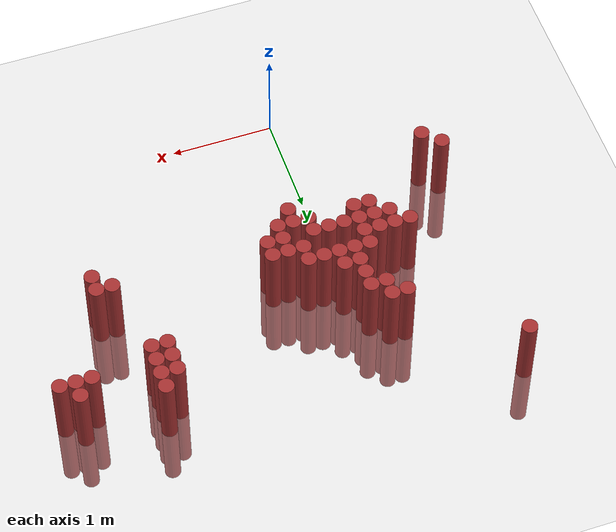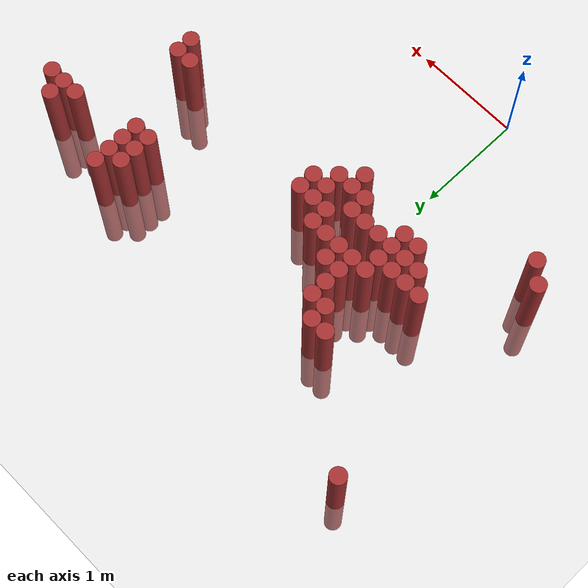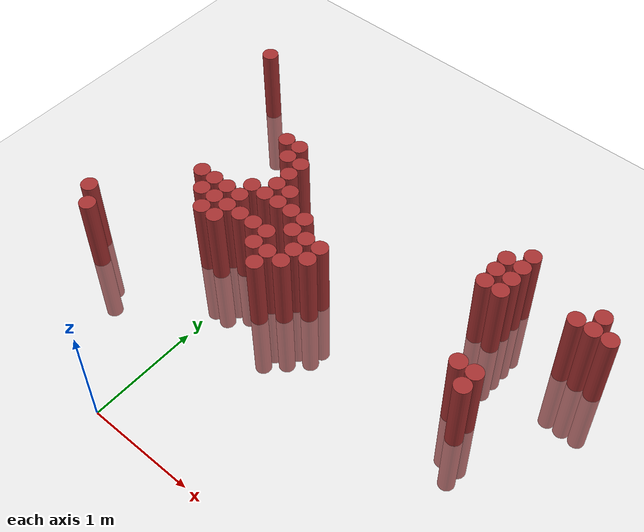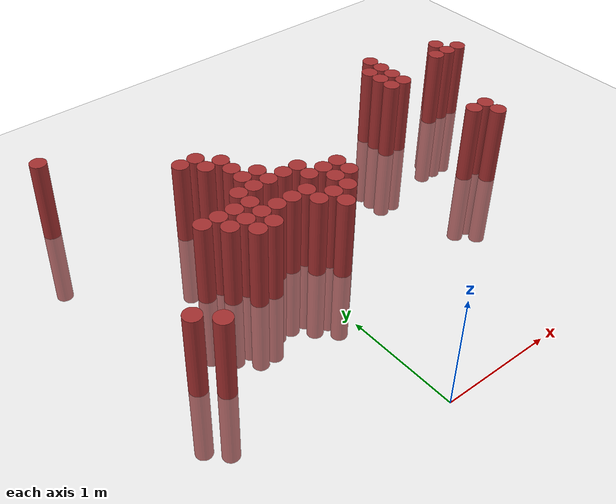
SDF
<sdf version="1.6">
 <world name="default">
  <model name="ground_plane">
   <static>1</static>
   <link name="link">
    <collision name="collision">
     <geometry><plane><normal>0 0 1</normal><size>100 100</size></plane></geometry>
     <surface><friction><ode><mu>100</mu><mu2>50</mu2></ode></friction></surface>
    </collision>
    <visual name="visual">
     <cast_shadows>0</cast_shadows>
     <geometry><plane><normal>0 0 1</normal><size>100 100</size></plane></geometry>
     <material>
      <script><uri>file://media/materials/scripts/gazebo.material</uri><name>Gazebo/Grey</name></script>
     </material>
    </visual>
   </link>
  </model>
  <model name="unit_cylinder_388">
   <static>1</static>
   <pose>-1.325000 1.225000 0.000000 0.000000 0.000000 0.000000</pose>
   <link name="link">
    <inertial>
     <mass>1</mass>
     <inertia><ixx>0.145833</ixx><ixy>0</ixy><ixz>0</ixz><iyy>0.145833</iyy><iyz>0</iyz><izz>0.125</izz></inertia>
    </inertial>
    <collision name="collision">
     <geometry><cylinder><radius>0.075000</radius><length>1.5</length></cylinder></geometry>
    </collision>
    <visual name="visual">
     <geometry><cylinder><radius>0.075000</radius><length>1.5</length></cylinder></geometry>
     <material>
      <ambient>0.648000 0.192000 0.192000 1</ambient>
      <diffuse>0.648000 0.192000 0.192000 1</diffuse>
     </material>
     <material>
      <script><name>Gazebo/Grey</name><uri>file://media/materials/scripts/gazebo.material</uri></script>
     </material>
    </visual>
   </link>
  </model>
  <model name="unit_cylinder_389">
   <static>1</static>
   <pose>-1.325000 3.475000 0.000000 0.000000 0.000000 0.000000</pose>
   <link name="link">
    <inertial>
     <mass>1</mass>
     <inertia><ixx>0.145833</ixx><ixy>0</ixy><ixz>0</ixz><iyy>0.145833</iyy><iyz>0</iyz><izz>0.125</izz></inertia>
    </inertial>
    <collision name="collision">
     <geometry><cylinder><radius>0.075000</radius><length>1.5</length></cylinder></geometry>
    </collision>
    <visual name="visual">
     <geometry><cylinder><radius>0.075000</radius><length>1.5</length></cylinder></geometry>
     <material>
      <ambient>0.648000 0.192000 0.192000 1</ambient>
      <diffuse>0.648000 0.192000 0.192000 1</diffuse>
     </material>
     <material>
      <script><name>Gazebo/Grey</name><uri>file://media/materials/scripts/gazebo.material</uri></script>
     </material>
    </visual>
   </link>
  </model>
  <model name="unit_cylinder_393">
   <static>1</static>
   <pose>-1.175000 1.075000 0.000000 0.000000 0.000000 0.000000</pose>
   <link name="link">
    <inertial>
     <mass>1</mass>
     <inertia><ixx>0.145833</ixx><ixy>0</ixy><ixz>0</ixz><iyy>0.145833</iyy><iyz>0</iyz><izz>0.125</izz></inertia>
    </inertial>
    <collision name="collision">
     <geometry><cylinder><radius>0.075000</radius><length>1.5</length></cylinder></geometry>
    </collision>
    <visual name="visual">
     <geometry><cylinder><radius>0.075000</radius><length>1.5</length></cylinder></geometry>
     <material>
      <ambient>0.648000 0.192000 0.192000 1</ambient>
      <diffuse>0.648000 0.192000 0.192000 1</diffuse>
     </material>
     <material>
      <script><name>Gazebo/Grey</name><uri>file://media/materials/scripts/gazebo.material</uri></script>
     </material>
    </visual>
   </link>
  </model>
  <model name="unit_cylinder_413">
   <static>1</static>
   <pose>-0.725000 1.975000 0.000000 0.000000 0.000000 0.000000</pose>
   <link name="link">
    <inertial>
     <mass>1</mass>
     <inertia><ixx>0.145833</ixx><ixy>0</ixy><ixz>0</ixz><iyy>0.145833</iyy><iyz>0</iyz><izz>0.125</izz></inertia>
    </inertial>
    <collision name="collision">
     <geometry><cylinder><radius>0.075000</radius><length>1.5</length></cylinder></geometry>
    </collision>
    <visual name="visual">
     <geometry><cylinder><radius>0.075000</radius><length>1.5</length></cylinder></geometry>
     <material>
      <ambient>0.648000 0.192000 0.192000 1</ambient>
      <diffuse>0.648000 0.192000 0.192000 1</diffuse>
     </material>
     <material>
      <script><name>Gazebo/Grey</name><uri>file://media/materials/scripts/gazebo.material</uri></script>
     </material>
    </visual>
   </link>
  </model>
  <model name="unit_cylinder_420">
   <static>1</static>
   <pose>-0.575000 1.825000 0.000000 0.000000 0.000000 0.000000</pose>
   <link name="link">
    <inertial>
     <mass>1</mass>
     <inertia><ixx>0.145833</ixx><ixy>0</ixy><ixz>0</ixz><iyy>0.145833</iyy><iyz>0</iyz><izz>0.125</izz></inertia>
    </inertial>
    <collision name="collision">
     <geometry><cylinder><radius>0.075000</radius><length>1.5</length></cylinder></geometry>
    </collision>
    <visual name="visual">
     <geometry><cylinder><radius>0.075000</radius><length>1.5</length></cylinder></geometry>
     <material>
      <ambient>0.648000 0.192000 0.192000 1</ambient>
      <diffuse>0.648000 0.192000 0.192000 1</diffuse>
     </material>
     <material>
      <script><name>Gazebo/Grey</name><uri>file://media/materials/scripts/gazebo.material</uri></script>
     </material>
    </visual>
   </link>
  </model>
  <model name="unit_cylinder_421">
   <static>1</static>
   <pose>-0.575000 1.975000 0.000000 0.000000 0.000000 0.000000</pose>
   <link name="link">
    <inertial>
     <mass>1</mass>
     <inertia><ixx>0.145833</ixx><ixy>0</ixy><ixz>0</ixz><iyy>0.145833</iyy><iyz>0</iyz><izz>0.125</izz></inertia>
    </inertial>
    <collision name="collision">
     <geometry><cylinder><radius>0.075000</radius><length>1.5</length></cylinder></geometry>
    </collision>
    <visual name="visual">
     <geometry><cylinder><radius>0.075000</radius><length>1.5</length></cylinder></geometry>
     <material>
      <ambient>0.648000 0.192000 0.192000 1</ambient>
      <diffuse>0.648000 0.192000 0.192000 1</diffuse>
     </material>
     <material>
      <script><name>Gazebo/Grey</name><uri>file://media/materials/scripts/gazebo.material</uri></script>
     </material>
    </visual>
   </link>
  </model>
  <model name="unit_cylinder_428">
   <static>1</static>
   <pose>-0.425000 1.675000 0.000000 0.000000 0.000000 0.000000</pose>
   <link name="link">
    <inertial>
     <mass>1</mass>
     <inertia><ixx>0.145833</ixx><ixy>0</ixy><ixz>0</ixz><iyy>0.145833</iyy><iyz>0</iyz><izz>0.125</izz></inertia>
    </inertial>
    <collision name="collision">
     <geometry><cylinder><radius>0.075000</radius><length>1.5</length></cylinder></geometry>
    </collision>
    <visual name="visual">
     <geometry><cylinder><radius>0.075000</radius><length>1.5</length></cylinder></geometry>
     <material>
      <ambient>0.648000 0.192000 0.192000 1</ambient>
      <diffuse>0.648000 0.192000 0.192000 1</diffuse>
     </material>
     <material>
      <script><name>Gazebo/Grey</name><uri>file://media/materials/scripts/gazebo.material</uri></script>
     </material>
    </visual>
   </link>
  </model>
  <model name="unit_cylinder_429">
   <static>1</static>
   <pose>-0.425000 1.825000 0.000000 0.000000 0.000000 0.000000</pose>
   <link name="link">
    <inertial>
     <mass>1</mass>
     <inertia><ixx>0.145833</ixx><ixy>0</ixy><ixz>0</ixz><iyy>0.145833</iyy><iyz>0</iyz><izz>0.125</izz></inertia>
    </inertial>
    <collision name="collision">
     <geometry><cylinder><radius>0.075000</radius><length>1.5</length></cylinder></geometry>
    </collision>
    <visual name="visual">
     <geometry><cylinder><radius>0.075000</radius><length>1.5</length></cylinder></geometry>
     <material>
      <ambient>0.648000 0.192000 0.192000 1</ambient>
      <diffuse>0.648000 0.192000 0.192000 1</diffuse>
     </material>
     <material>
      <script><name>Gazebo/Grey</name><uri>file://media/materials/scripts/gazebo.material</uri></script>
     </material>
    </visual>
   </link>
  </model>
  <model name="unit_cylinder_430">
   <static>1</static>
   <pose>-0.425000 1.975000 0.000000 0.000000 0.000000 0.000000</pose>
   <link name="link">
    <inertial>
     <mass>1</mass>
     <inertia><ixx>0.145833</ixx><ixy>0</ixy><ixz>0</ixz><iyy>0.145833</iyy><iyz>0</iyz><izz>0.125</izz></inertia>
    </inertial>
    <collision name="collision">
     <geometry><cylinder><radius>0.075000</radius><length>1.5</length></cylinder></geometry>
    </collision>
    <visual name="visual">
     <geometry><cylinder><radius>0.075000</radius><length>1.5</length></cylinder></geometry>
     <material>
      <ambient>0.648000 0.192000 0.192000 1</ambient>
      <diffuse>0.648000 0.192000 0.192000 1</diffuse>
     </material>
     <material>
      <script><name>Gazebo/Grey</name><uri>file://media/materials/scripts/gazebo.material</uri></script>
     </material>
    </visual>
   </link>
  </model>
  <model name="unit_cylinder_431">
   <static>1</static>
   <pose>-0.425000 2.725000 0.000000 0.000000 0.000000 0.000000</pose>
   <link name="link">
    <inertial>
     <mass>1</mass>
     <inertia><ixx>0.145833</ixx><ixy>0</ixy><ixz>0</ixz><iyy>0.145833</iyy><iyz>0</iyz><izz>0.125</izz></inertia>
    </inertial>
    <collision name="collision">
     <geometry><cylinder><radius>0.075000</radius><length>1.5</length></cylinder></geometry>
    </collision>
    <visual name="visual">
     <geometry><cylinder><radius>0.075000</radius><length>1.5</length></cylinder></geometry>
     <material>
      <ambient>0.648000 0.192000 0.192000 1</ambient>
      <diffuse>0.648000 0.192000 0.192000 1</diffuse>
     </material>
     <material>
      <script><name>Gazebo/Grey</name><uri>file://media/materials/scripts/gazebo.material</uri></script>
     </material>
    </visual>
   </link>
  </model>
  <model name="unit_cylinder_434">
   <static>1</static>
   <pose>-0.275000 1.675000 0.000000 0.000000 0.000000 0.000000</pose>
   <link name="link">
    <inertial>
     <mass>1</mass>
     <inertia><ixx>0.145833</ixx><ixy>0</ixy><ixz>0</ixz><iyy>0.145833</iyy><iyz>0</iyz><izz>0.125</izz></inertia>
    </inertial>
    <collision name="collision">
     <geometry><cylinder><radius>0.075000</radius><length>1.5</length></cylinder></geometry>
    </collision>
    <visual name="visual">
     <geometry><cylinder><radius>0.075000</radius><length>1.5</length></cylinder></geometry>
     <material>
      <ambient>0.648000 0.192000 0.192000 1</ambient>
      <diffuse>0.648000 0.192000 0.192000 1</diffuse>
     </material>
     <material>
      <script><name>Gazebo/Grey</name><uri>file://media/materials/scripts/gazebo.material</uri></script>
     </material>
    </visual>
   </link>
  </model>
  <model name="unit_cylinder_435">
   <static>1</static>
   <pose>-0.275000 1.825000 0.000000 0.000000 0.000000 0.000000</pose>
   <link name="link">
    <inertial>
     <mass>1</mass>
     <inertia><ixx>0.145833</ixx><ixy>0</ixy><ixz>0</ixz><iyy>0.145833</iyy><iyz>0</iyz><izz>0.125</izz></inertia>
    </inertial>
    <collision name="collision">
     <geometry><cylinder><radius>0.075000</radius><length>1.5</length></cylinder></geometry>
    </collision>
    <visual name="visual">
     <geometry><cylinder><radius>0.075000</radius><length>1.5</length></cylinder></geometry>
     <material>
      <ambient>0.648000 0.192000 0.192000 1</ambient>
      <diffuse>0.648000 0.192000 0.192000 1</diffuse>
     </material>
     <material>
      <script><name>Gazebo/Grey</name><uri>file://media/materials/scripts/gazebo.material</uri></script>
     </material>
    </visual>
   </link>
  </model>
  <model name="unit_cylinder_436">
   <static>1</static>
   <pose>-0.275000 1.975000 0.000000 0.000000 0.000000 0.000000</pose>
   <link name="link">
    <inertial>
     <mass>1</mass>
     <inertia><ixx>0.145833</ixx><ixy>0</ixy><ixz>0</ixz><iyy>0.145833</iyy><iyz>0</iyz><izz>0.125</izz></inertia>
    </inertial>
    <collision name="collision">
     <geometry><cylinder><radius>0.075000</radius><length>1.5</length></cylinder></geometry>
    </collision>
    <visual name="visual">
     <geometry><cylinder><radius>0.075000</radius><length>1.5</length></cylinder></geometry>
     <material>
      <ambient>0.648000 0.192000 0.192000 1</ambient>
      <diffuse>0.648000 0.192000 0.192000 1</diffuse>
     </material>
     <material>
      <script><name>Gazebo/Grey</name><uri>file://media/materials/scripts/gazebo.material</uri></script>
     </material>
    </visual>
   </link>
  </model>
  <model name="unit_cylinder_437">
   <static>1</static>
   <pose>-0.275000 2.125000 0.000000 0.000000 0.000000 0.000000</pose>
   <link name="link">
    <inertial>
     <mass>1</mass>
     <inertia><ixx>0.145833</ixx><ixy>0</ixy><ixz>0</ixz><iyy>0.145833</iyy><iyz>0</iyz><izz>0.125</izz></inertia>
    </inertial>
    <collision name="collision">
     <geometry><cylinder><radius>0.075000</radius><length>1.5</length></cylinder></geometry>
    </collision>
    <visual name="visual">
     <geometry><cylinder><radius>0.075000</radius><length>1.5</length></cylinder></geometry>
     <material>
      <ambient>0.648000 0.192000 0.192000 1</ambient>
      <diffuse>0.648000 0.192000 0.192000 1</diffuse>
     </material>
     <material>
      <script><name>Gazebo/Grey</name><uri>file://media/materials/scripts/gazebo.material</uri></script>
     </material>
    </visual>
   </link>
  </model>
  <model name="unit_cylinder_438">
   <static>1</static>
   <pose>-0.275000 2.575000 0.000000 0.000000 0.000000 0.000000</pose>
   <link name="link">
    <inertial>
     <mass>1</mass>
     <inertia><ixx>0.145833</ixx><ixy>0</ixy><ixz>0</ixz><iyy>0.145833</iyy><iyz>0</iyz><izz>0.125</izz></inertia>
    </inertial>
    <collision name="collision">
     <geometry><cylinder><radius>0.075000</radius><length>1.5</length></cylinder></geometry>
    </collision>
    <visual name="visual">
     <geometry><cylinder><radius>0.075000</radius><length>1.5</length></cylinder></geometry>
     <material>
      <ambient>0.648000 0.192000 0.192000 1</ambient>
      <diffuse>0.648000 0.192000 0.192000 1</diffuse>
     </material>
     <material>
      <script><name>Gazebo/Grey</name><uri>file://media/materials/scripts/gazebo.material</uri></script>
     </material>
    </visual>
   </link>
  </model>
  <model name="unit_cylinder_439">
   <static>1</static>
   <pose>-0.275000 2.725000 0.000000 0.000000 0.000000 0.000000</pose>
   <link name="link">
    <inertial>
     <mass>1</mass>
     <inertia><ixx>0.145833</ixx><ixy>0</ixy><ixz>0</ixz><iyy>0.145833</iyy><iyz>0</iyz><izz>0.125</izz></inertia>
    </inertial>
    <collision name="collision">
     <geometry><cylinder><radius>0.075000</radius><length>1.5</length></cylinder></geometry>
    </collision>
    <visual name="visual">
     <geometry><cylinder><radius>0.075000</radius><length>1.5</length></cylinder></geometry>
     <material>
      <ambient>0.648000 0.192000 0.192000 1</ambient>
      <diffuse>0.648000 0.192000 0.192000 1</diffuse>
     </material>
     <material>
      <script><name>Gazebo/Grey</name><uri>file://media/materials/scripts/gazebo.material</uri></script>
     </material>
    </visual>
   </link>
  </model>
  <model name="unit_cylinder_441">
   <static>1</static>
   <pose>-0.125000 1.825000 0.000000 0.000000 0.000000 0.000000</pose>
   <link name="link">
    <inertial>
     <mass>1</mass>
     <inertia><ixx>0.145833</ixx><ixy>0</ixy><ixz>0</ixz><iyy>0.145833</iyy><iyz>0</iyz><izz>0.125</izz></inertia>
    </inertial>
    <collision name="collision">
     <geometry><cylinder><radius>0.075000</radius><length>1.5</length></cylinder></geometry>
    </collision>
    <visual name="visual">
     <geometry><cylinder><radius>0.075000</radius><length>1.5</length></cylinder></geometry>
     <material>
      <ambient>0.648000 0.192000 0.192000 1</ambient>
      <diffuse>0.648000 0.192000 0.192000 1</diffuse>
     </material>
     <material>
      <script><name>Gazebo/Grey</name><uri>file://media/materials/scripts/gazebo.material</uri></script>
     </material>
    </visual>
   </link>
  </model>
  <model name="unit_cylinder_442">
   <static>1</static>
   <pose>-0.125000 2.125000 0.000000 0.000000 0.000000 0.000000</pose>
   <link name="link">
    <inertial>
     <mass>1</mass>
     <inertia><ixx>0.145833</ixx><ixy>0</ixy><ixz>0</ixz><iyy>0.145833</iyy><iyz>0</iyz><izz>0.125</izz></inertia>
    </inertial>
    <collision name="collision">
     <geometry><cylinder><radius>0.075000</radius><length>1.5</length></cylinder></geometry>
    </collision>
    <visual name="visual">
     <geometry><cylinder><radius>0.075000</radius><length>1.5</length></cylinder></geometry>
     <material>
      <ambient>0.648000 0.192000 0.192000 1</ambient>
      <diffuse>0.648000 0.192000 0.192000 1</diffuse>
     </material>
     <material>
      <script><name>Gazebo/Grey</name><uri>file://media/materials/scripts/gazebo.material</uri></script>
     </material>
    </visual>
   </link>
  </model>
  <model name="unit_cylinder_443">
   <static>1</static>
   <pose>-0.125000 2.275000 0.000000 0.000000 0.000000 0.000000</pose>
   <link name="link">
    <inertial>
     <mass>1</mass>
     <inertia><ixx>0.145833</ixx><ixy>0</ixy><ixz>0</ixz><iyy>0.145833</iyy><iyz>0</iyz><izz>0.125</izz></inertia>
    </inertial>
    <collision name="collision">
     <geometry><cylinder><radius>0.075000</radius><length>1.5</length></cylinder></geometry>
    </collision>
    <visual name="visual">
     <geometry><cylinder><radius>0.075000</radius><length>1.5</length></cylinder></geometry>
     <material>
      <ambient>0.648000 0.192000 0.192000 1</ambient>
      <diffuse>0.648000 0.192000 0.192000 1</diffuse>
     </material>
     <material>
      <script><name>Gazebo/Grey</name><uri>file://media/materials/scripts/gazebo.material</uri></script>
     </material>
    </visual>
   </link>
  </model>
  <model name="unit_cylinder_444">
   <static>1</static>
   <pose>-0.125000 2.425000 0.000000 0.000000 0.000000 0.000000</pose>
   <link name="link">
    <inertial>
     <mass>1</mass>
     <inertia><ixx>0.145833</ixx><ixy>0</ixy><ixz>0</ixz><iyy>0.145833</iyy><iyz>0</iyz><izz>0.125</izz></inertia>
    </inertial>
    <collision name="collision">
     <geometry><cylinder><radius>0.075000</radius><length>1.5</length></cylinder></geometry>
    </collision>
    <visual name="visual">
     <geometry><cylinder><radius>0.075000</radius><length>1.5</length></cylinder></geometry>
     <material>
      <ambient>0.648000 0.192000 0.192000 1</ambient>
      <diffuse>0.648000 0.192000 0.192000 1</diffuse>
     </material>
     <material>
      <script><name>Gazebo/Grey</name><uri>file://media/materials/scripts/gazebo.material</uri></script>
     </material>
    </visual>
   </link>
  </model>
  <model name="unit_cylinder_445">
   <static>1</static>
   <pose>-0.125000 2.575000 0.000000 0.000000 0.000000 0.000000</pose>
   <link name="link">
    <inertial>
     <mass>1</mass>
     <inertia><ixx>0.145833</ixx><ixy>0</ixy><ixz>0</ixz><iyy>0.145833</iyy><iyz>0</iyz><izz>0.125</izz></inertia>
    </inertial>
    <collision name="collision">
     <geometry><cylinder><radius>0.075000</radius><length>1.5</length></cylinder></geometry>
    </collision>
    <visual name="visual">
     <geometry><cylinder><radius>0.075000</radius><length>1.5</length></cylinder></geometry>
     <material>
      <ambient>0.648000 0.192000 0.192000 1</ambient>
      <diffuse>0.648000 0.192000 0.192000 1</diffuse>
     </material>
     <material>
      <script><name>Gazebo/Grey</name><uri>file://media/materials/scripts/gazebo.material</uri></script>
     </material>
    </visual>
   </link>
  </model>
  <model name="unit_cylinder_448">
   <static>1</static>
   <pose>0.025000 1.825000 0.000000 0.000000 0.000000 0.000000</pose>
   <link name="link">
    <inertial>
     <mass>1</mass>
     <inertia><ixx>0.145833</ixx><ixy>0</ixy><ixz>0</ixz><iyy>0.145833</iyy><iyz>0</iyz><izz>0.125</izz></inertia>
    </inertial>
    <collision name="collision">
     <geometry><cylinder><radius>0.075000</radius><length>1.5</length></cylinder></geometry>
    </collision>
    <visual name="visual">
     <geometry><cylinder><radius>0.075000</radius><length>1.5</length></cylinder></geometry>
     <material>
      <ambient>0.648000 0.192000 0.192000 1</ambient>
      <diffuse>0.648000 0.192000 0.192000 1</diffuse>
     </material>
     <material>
      <script><name>Gazebo/Grey</name><uri>file://media/materials/scripts/gazebo.material</uri></script>
     </material>
    </visual>
   </link>
  </model>
  <model name="unit_cylinder_449">
   <static>1</static>
   <pose>0.025000 2.125000 0.000000 0.000000 0.000000 0.000000</pose>
   <link name="link">
    <inertial>
     <mass>1</mass>
     <inertia><ixx>0.145833</ixx><ixy>0</ixy><ixz>0</ixz><iyy>0.145833</iyy><iyz>0</iyz><izz>0.125</izz></inertia>
    </inertial>
    <collision name="collision">
     <geometry><cylinder><radius>0.075000</radius><length>1.5</length></cylinder></geometry>
    </collision>
    <visual name="visual">
     <geometry><cylinder><radius>0.075000</radius><length>1.5</length></cylinder></geometry>
     <material>
      <ambient>0.648000 0.192000 0.192000 1</ambient>
      <diffuse>0.648000 0.192000 0.192000 1</diffuse>
     </material>
     <material>
      <script><name>Gazebo/Grey</name><uri>file://media/materials/scripts/gazebo.material</uri></script>
     </material>
    </visual>
   </link>
  </model>
  <model name="unit_cylinder_450">
   <static>1</static>
   <pose>0.025000 2.275000 0.000000 0.000000 0.000000 0.000000</pose>
   <link name="link">
    <inertial>
     <mass>1</mass>
     <inertia><ixx>0.145833</ixx><ixy>0</ixy><ixz>0</ixz><iyy>0.145833</iyy><iyz>0</iyz><izz>0.125</izz></inertia>
    </inertial>
    <collision name="collision">
     <geometry><cylinder><radius>0.075000</radius><length>1.5</length></cylinder></geometry>
    </collision>
    <visual name="visual">
     <geometry><cylinder><radius>0.075000</radius><length>1.5</length></cylinder></geometry>
     <material>
      <ambient>0.648000 0.192000 0.192000 1</ambient>
      <diffuse>0.648000 0.192000 0.192000 1</diffuse>
     </material>
     <material>
      <script><name>Gazebo/Grey</name><uri>file://media/materials/scripts/gazebo.material</uri></script>
     </material>
    </visual>
   </link>
  </model>
  <model name="unit_cylinder_452">
   <static>1</static>
   <pose>0.175000 1.675000 0.000000 0.000000 0.000000 0.000000</pose>
   <link name="link">
    <inertial>
     <mass>1</mass>
     <inertia><ixx>0.145833</ixx><ixy>0</ixy><ixz>0</ixz><iyy>0.145833</iyy><iyz>0</iyz><izz>0.125</izz></inertia>
    </inertial>
    <collision name="collision">
     <geometry><cylinder><radius>0.075000</radius><length>1.5</length></cylinder></geometry>
    </collision>
    <visual name="visual">
     <geometry><cylinder><radius>0.075000</radius><length>1.5</length></cylinder></geometry>
     <material>
      <ambient>0.648000 0.192000 0.192000 1</ambient>
      <diffuse>0.648000 0.192000 0.192000 1</diffuse>
     </material>
     <material>
      <script><name>Gazebo/Grey</name><uri>file://media/materials/scripts/gazebo.material</uri></script>
     </material>
    </visual>
   </link>
  </model>
  <model name="unit_cylinder_453">
   <static>1</static>
   <pose>0.175000 1.825000 0.000000 0.000000 0.000000 0.000000</pose>
   <link name="link">
    <inertial>
     <mass>1</mass>
     <inertia><ixx>0.145833</ixx><ixy>0</ixy><ixz>0</ixz><iyy>0.145833</iyy><iyz>0</iyz><izz>0.125</izz></inertia>
    </inertial>
    <collision name="collision">
     <geometry><cylinder><radius>0.075000</radius><length>1.5</length></cylinder></geometry>
    </collision>
    <visual name="visual">
     <geometry><cylinder><radius>0.075000</radius><length>1.5</length></cylinder></geometry>
     <material>
      <ambient>0.648000 0.192000 0.192000 1</ambient>
      <diffuse>0.648000 0.192000 0.192000 1</diffuse>
     </material>
     <material>
      <script><name>Gazebo/Grey</name><uri>file://media/materials/scripts/gazebo.material</uri></script>
     </material>
    </visual>
   </link>
  </model>
  <model name="unit_cylinder_454">
   <static>1</static>
   <pose>0.175000 2.125000 0.000000 0.000000 0.000000 0.000000</pose>
   <link name="link">
    <inertial>
     <mass>1</mass>
     <inertia><ixx>0.145833</ixx><ixy>0</ixy><ixz>0</ixz><iyy>0.145833</iyy><iyz>0</iyz><izz>0.125</izz></inertia>
    </inertial>
    <collision name="collision">
     <geometry><cylinder><radius>0.075000</radius><length>1.5</length></cylinder></geometry>
    </collision>
    <visual name="visual">
     <geometry><cylinder><radius>0.075000</radius><length>1.5</length></cylinder></geometry>
     <material>
      <ambient>0.648000 0.192000 0.192000 1</ambient>
      <diffuse>0.648000 0.192000 0.192000 1</diffuse>
     </material>
     <material>
      <script><name>Gazebo/Grey</name><uri>file://media/materials/scripts/gazebo.material</uri></script>
     </material>
    </visual>
   </link>
  </model>
  <model name="unit_cylinder_458">
   <static>1</static>
   <pose>0.325000 1.525000 0.000000 0.000000 0.000000 0.000000</pose>
   <link name="link">
    <inertial>
     <mass>1</mass>
     <inertia><ixx>0.145833</ixx><ixy>0</ixy><ixz>0</ixz><iyy>0.145833</iyy><iyz>0</iyz><izz>0.125</izz></inertia>
    </inertial>
    <collision name="collision">
     <geometry><cylinder><radius>0.075000</radius><length>1.5</length></cylinder></geometry>
    </collision>
    <visual name="visual">
     <geometry><cylinder><radius>0.075000</radius><length>1.5</length></cylinder></geometry>
     <material>
      <ambient>0.648000 0.192000 0.192000 1</ambient>
      <diffuse>0.648000 0.192000 0.192000 1</diffuse>
     </material>
     <material>
      <script><name>Gazebo/Grey</name><uri>file://media/materials/scripts/gazebo.material</uri></script>
     </material>
    </visual>
   </link>
  </model>
  <model name="unit_cylinder_459">
   <static>1</static>
   <pose>0.325000 1.675000 0.000000 0.000000 0.000000 0.000000</pose>
   <link name="link">
    <inertial>
     <mass>1</mass>
     <inertia><ixx>0.145833</ixx><ixy>0</ixy><ixz>0</ixz><iyy>0.145833</iyy><iyz>0</iyz><izz>0.125</izz></inertia>
    </inertial>
    <collision name="collision">
     <geometry><cylinder><radius>0.075000</radius><length>1.5</length></cylinder></geometry>
    </collision>
    <visual name="visual">
     <geometry><cylinder><radius>0.075000</radius><length>1.5</length></cylinder></geometry>
     <material>
      <ambient>0.648000 0.192000 0.192000 1</ambient>
      <diffuse>0.648000 0.192000 0.192000 1</diffuse>
     </material>
     <material>
      <script><name>Gazebo/Grey</name><uri>file://media/materials/scripts/gazebo.material</uri></script>
     </material>
    </visual>
   </link>
  </model>
  <model name="unit_cylinder_460">
   <static>1</static>
   <pose>0.325000 1.975000 0.000000 0.000000 0.000000 0.000000</pose>
   <link name="link">
    <inertial>
     <mass>1</mass>
     <inertia><ixx>0.145833</ixx><ixy>0</ixy><ixz>0</ixz><iyy>0.145833</iyy><iyz>0</iyz><izz>0.125</izz></inertia>
    </inertial>
    <collision name="collision">
     <geometry><cylinder><radius>0.075000</radius><length>1.5</length></cylinder></geometry>
    </collision>
    <visual name="visual">
     <geometry><cylinder><radius>0.075000</radius><length>1.5</length></cylinder></geometry>
     <material>
      <ambient>0.648000 0.192000 0.192000 1</ambient>
      <diffuse>0.648000 0.192000 0.192000 1</diffuse>
     </material>
     <material>
      <script><name>Gazebo/Grey</name><uri>file://media/materials/scripts/gazebo.material</uri></script>
     </material>
    </visual>
   </link>
  </model>
  <model name="unit_cylinder_461">
   <static>1</static>
   <pose>0.325000 2.125000 0.000000 0.000000 0.000000 0.000000</pose>
   <link name="link">
    <inertial>
     <mass>1</mass>
     <inertia><ixx>0.145833</ixx><ixy>0</ixy><ixz>0</ixz><iyy>0.145833</iyy><iyz>0</iyz><izz>0.125</izz></inertia>
    </inertial>
    <collision name="collision">
     <geometry><cylinder><radius>0.075000</radius><length>1.5</length></cylinder></geometry>
    </collision>
    <visual name="visual">
     <geometry><cylinder><radius>0.075000</radius><length>1.5</length></cylinder></geometry>
     <material>
      <ambient>0.648000 0.192000 0.192000 1</ambient>
      <diffuse>0.648000 0.192000 0.192000 1</diffuse>
     </material>
     <material>
      <script><name>Gazebo/Grey</name><uri>file://media/materials/scripts/gazebo.material</uri></script>
     </material>
    </visual>
   </link>
  </model>
  <model name="unit_cylinder_464">
   <static>1</static>
   <pose>0.475000 1.675000 0.000000 0.000000 0.000000 0.000000</pose>
   <link name="link">
    <inertial>
     <mass>1</mass>
     <inertia><ixx>0.145833</ixx><ixy>0</ixy><ixz>0</ixz><iyy>0.145833</iyy><iyz>0</iyz><izz>0.125</izz></inertia>
    </inertial>
    <collision name="collision">
     <geometry><cylinder><radius>0.075000</radius><length>1.5</length></cylinder></geometry>
    </collision>
    <visual name="visual">
     <geometry><cylinder><radius>0.075000</radius><length>1.5</length></cylinder></geometry>
     <material>
      <ambient>0.648000 0.192000 0.192000 1</ambient>
      <diffuse>0.648000 0.192000 0.192000 1</diffuse>
     </material>
     <material>
      <script><name>Gazebo/Grey</name><uri>file://media/materials/scripts/gazebo.material</uri></script>
     </material>
    </visual>
   </link>
  </model>
  <model name="unit_cylinder_465">
   <static>1</static>
   <pose>0.475000 1.825000 0.000000 0.000000 0.000000 0.000000</pose>
   <link name="link">
    <inertial>
     <mass>1</mass>
     <inertia><ixx>0.145833</ixx><ixy>0</ixy><ixz>0</ixz><iyy>0.145833</iyy><iyz>0</iyz><izz>0.125</izz></inertia>
    </inertial>
    <collision name="collision">
     <geometry><cylinder><radius>0.075000</radius><length>1.5</length></cylinder></geometry>
    </collision>
    <visual name="visual">
     <geometry><cylinder><radius>0.075000</radius><length>1.5</length></cylinder></geometry>
     <material>
      <ambient>0.648000 0.192000 0.192000 1</ambient>
      <diffuse>0.648000 0.192000 0.192000 1</diffuse>
     </material>
     <material>
      <script><name>Gazebo/Grey</name><uri>file://media/materials/scripts/gazebo.material</uri></script>
     </material>
    </visual>
   </link>
  </model>
  <model name="unit_cylinder_466">
   <static>1</static>
   <pose>0.475000 1.975000 0.000000 0.000000 0.000000 0.000000</pose>
   <link name="link">
    <inertial>
     <mass>1</mass>
     <inertia><ixx>0.145833</ixx><ixy>0</ixy><ixz>0</ixz><iyy>0.145833</iyy><iyz>0</iyz><izz>0.125</izz></inertia>
    </inertial>
    <collision name="collision">
     <geometry><cylinder><radius>0.075000</radius><length>1.5</length></cylinder></geometry>
    </collision>
    <visual name="visual">
     <geometry><cylinder><radius>0.075000</radius><length>1.5</length></cylinder></geometry>
     <material>
      <ambient>0.648000 0.192000 0.192000 1</ambient>
      <diffuse>0.648000 0.192000 0.192000 1</diffuse>
     </material>
     <material>
      <script><name>Gazebo/Grey</name><uri>file://media/materials/scripts/gazebo.material</uri></script>
     </material>
    </visual>
   </link>
  </model>
  <model name="unit_cylinder_467">
   <static>1</static>
   <pose>0.625000 1.825000 0.000000 0.000000 0.000000 0.000000</pose>
   <link name="link">
    <inertial>
     <mass>1</mass>
     <inertia><ixx>0.145833</ixx><ixy>0</ixy><ixz>0</ixz><iyy>0.145833</iyy><iyz>0</iyz><izz>0.125</izz></inertia>
    </inertial>
    <collision name="collision">
     <geometry><cylinder><radius>0.075000</radius><length>1.5</length></cylinder></geometry>
    </collision>
    <visual name="visual">
     <geometry><cylinder><radius>0.075000</radius><length>1.5</length></cylinder></geometry>
     <material>
      <ambient>0.648000 0.192000 0.192000 1</ambient>
      <diffuse>0.648000 0.192000 0.192000 1</diffuse>
     </material>
     <material>
      <script><name>Gazebo/Grey</name><uri>file://media/materials/scripts/gazebo.material</uri></script>
     </material>
    </visual>
   </link>
  </model>
  <model name="unit_cylinder_468">
   <static>1</static>
   <pose>0.625000 1.975000 0.000000 0.000000 0.000000 0.000000</pose>
   <link name="link">
    <inertial>
     <mass>1</mass>
     <inertia><ixx>0.145833</ixx><ixy>0</ixy><ixz>0</ixz><iyy>0.145833</iyy><iyz>0</iyz><izz>0.125</izz></inertia>
    </inertial>
    <collision name="collision">
     <geometry><cylinder><radius>0.075000</radius><length>1.5</length></cylinder></geometry>
    </collision>
    <visual name="visual">
     <geometry><cylinder><radius>0.075000</radius><length>1.5</length></cylinder></geometry>
     <material>
      <ambient>0.648000 0.192000 0.192000 1</ambient>
      <diffuse>0.648000 0.192000 0.192000 1</diffuse>
     </material>
     <material>
      <script><name>Gazebo/Grey</name><uri>file://media/materials/scripts/gazebo.material</uri></script>
     </material>
    </visual>
   </link>
  </model>
  <model name="unit_cylinder_479">
   <static>1</static>
   <pose>1.825000 2.575000 0.000000 0.000000 0.000000 0.000000</pose>
   <link name="link">
    <inertial>
     <mass>1</mass>
     <inertia><ixx>0.145833</ixx><ixy>0</ixy><ixz>0</ixz><iyy>0.145833</iyy><iyz>0</iyz><izz>0.125</izz></inertia>
    </inertial>
    <collision name="collision">
     <geometry><cylinder><radius>0.075000</radius><length>1.5</length></cylinder></geometry>
    </collision>
    <visual name="visual">
     <geometry><cylinder><radius>0.075000</radius><length>1.5</length></cylinder></geometry>
     <material>
      <ambient>0.648000 0.192000 0.192000 1</ambient>
      <diffuse>0.648000 0.192000 0.192000 1</diffuse>
     </material>
     <material>
      <script><name>Gazebo/Grey</name><uri>file://media/materials/scripts/gazebo.material</uri></script>
     </material>
    </visual>
   </link>
  </model>
  <model name="unit_cylinder_480">
   <static>1</static>
   <pose>1.825000 2.725000 0.000000 0.000000 0.000000 0.000000</pose>
   <link name="link">
    <inertial>
     <mass>1</mass>
     <inertia><ixx>0.145833</ixx><ixy>0</ixy><ixz>0</ixz><iyy>0.145833</iyy><iyz>0</iyz><izz>0.125</izz></inertia>
    </inertial>
    <collision name="collision">
     <geometry><cylinder><radius>0.075000</radius><length>1.5</length></cylinder></geometry>
    </collision>
    <visual name="visual">
     <geometry><cylinder><radius>0.075000</radius><length>1.5</length></cylinder></geometry>
     <material>
      <ambient>0.648000 0.192000 0.192000 1</ambient>
      <diffuse>0.648000 0.192000 0.192000 1</diffuse>
     </material>
     <material>
      <script><name>Gazebo/Grey</name><uri>file://media/materials/scripts/gazebo.material</uri></script>
     </material>
    </visual>
   </link>
  </model>
  <model name="unit_cylinder_481">
   <static>1</static>
   <pose>1.825000 2.875000 0.000000 0.000000 0.000000 0.000000</pose>
   <link name="link">
    <inertial>
     <mass>1</mass>
     <inertia><ixx>0.145833</ixx><ixy>0</ixy><ixz>0</ixz><iyy>0.145833</iyy><iyz>0</iyz><izz>0.125</izz></inertia>
    </inertial>
    <collision name="collision">
     <geometry><cylinder><radius>0.075000</radius><length>1.5</length></cylinder></geometry>
    </collision>
    <visual name="visual">
     <geometry><cylinder><radius>0.075000</radius><length>1.5</length></cylinder></geometry>
     <material>
      <ambient>0.648000 0.192000 0.192000 1</ambient>
      <diffuse>0.648000 0.192000 0.192000 1</diffuse>
     </material>
     <material>
      <script><name>Gazebo/Grey</name><uri>file://media/materials/scripts/gazebo.material</uri></script>
     </material>
    </visual>
   </link>
  </model>
  <model name="unit_cylinder_483">
   <static>1</static>
   <pose>1.975000 2.575000 0.000000 0.000000 0.000000 0.000000</pose>
   <link name="link">
    <inertial>
     <mass>1</mass>
     <inertia><ixx>0.145833</ixx><ixy>0</ixy><ixz>0</ixz><iyy>0.145833</iyy><iyz>0</iyz><izz>0.125</izz></inertia>
    </inertial>
    <collision name="collision">
     <geometry><cylinder><radius>0.075000</radius><length>1.5</length></cylinder></geometry>
    </collision>
    <visual name="visual">
     <geometry><cylinder><radius>0.075000</radius><length>1.5</length></cylinder></geometry>
     <material>
      <ambient>0.648000 0.192000 0.192000 1</ambient>
      <diffuse>0.648000 0.192000 0.192000 1</diffuse>
     </material>
     <material>
      <script><name>Gazebo/Grey</name><uri>file://media/materials/scripts/gazebo.material</uri></script>
     </material>
    </visual>
   </link>
  </model>
  <model name="unit_cylinder_484">
   <static>1</static>
   <pose>1.975000 2.725000 0.000000 0.000000 0.000000 0.000000</pose>
   <link name="link">
    <inertial>
     <mass>1</mass>
     <inertia><ixx>0.145833</ixx><ixy>0</ixy><ixz>0</ixz><iyy>0.145833</iyy><iyz>0</iyz><izz>0.125</izz></inertia>
    </inertial>
    <collision name="collision">
     <geometry><cylinder><radius>0.075000</radius><length>1.5</length></cylinder></geometry>
    </collision>
    <visual name="visual">
     <geometry><cylinder><radius>0.075000</radius><length>1.5</length></cylinder></geometry>
     <material>
      <ambient>0.648000 0.192000 0.192000 1</ambient>
      <diffuse>0.648000 0.192000 0.192000 1</diffuse>
     </material>
     <material>
      <script><name>Gazebo/Grey</name><uri>file://media/materials/scripts/gazebo.material</uri></script>
     </material>
    </visual>
   </link>
  </model>
  <model name="unit_cylinder_485">
   <static>1</static>
   <pose>1.975000 2.875000 0.000000 0.000000 0.000000 0.000000</pose>
   <link name="link">
    <inertial>
     <mass>1</mass>
     <inertia><ixx>0.145833</ixx><ixy>0</ixy><ixz>0</ixz><iyy>0.145833</iyy><iyz>0</iyz><izz>0.125</izz></inertia>
    </inertial>
    <collision name="collision">
     <geometry><cylinder><radius>0.075000</radius><length>1.5</length></cylinder></geometry>
    </collision>
    <visual name="visual">
     <geometry><cylinder><radius>0.075000</radius><length>1.5</length></cylinder></geometry>
     <material>
      <ambient>0.648000 0.192000 0.192000 1</ambient>
      <diffuse>0.648000 0.192000 0.192000 1</diffuse>
     </material>
     <material>
      <script><name>Gazebo/Grey</name><uri>file://media/materials/scripts/gazebo.material</uri></script>
     </material>
    </visual>
   </link>
  </model>
  <model name="unit_cylinder_486">
   <static>1</static>
   <pose>1.975000 3.025000 0.000000 0.000000 0.000000 0.000000</pose>
   <link name="link">
    <inertial>
     <mass>1</mass>
     <inertia><ixx>0.145833</ixx><ixy>0</ixy><ixz>0</ixz><iyy>0.145833</iyy><iyz>0</iyz><izz>0.125</izz></inertia>
    </inertial>
    <collision name="collision">
     <geometry><cylinder><radius>0.075000</radius><length>1.5</length></cylinder></geometry>
    </collision>
    <visual name="visual">
     <geometry><cylinder><radius>0.075000</radius><length>1.5</length></cylinder></geometry>
     <material>
      <ambient>0.648000 0.192000 0.192000 1</ambient>
      <diffuse>0.648000 0.192000 0.192000 1</diffuse>
     </material>
     <material>
      <script><name>Gazebo/Grey</name><uri>file://media/materials/scripts/gazebo.material</uri></script>
     </material>
    </visual>
   </link>
  </model>
  <model name="unit_cylinder_489">
   <static>1</static>
   <pose>2.125000 1.825000 0.000000 0.000000 0.000000 0.000000</pose>
   <link name="link">
    <inertial>
     <mass>1</mass>
     <inertia><ixx>0.145833</ixx><ixy>0</ixy><ixz>0</ixz><iyy>0.145833</iyy><iyz>0</iyz><izz>0.125</izz></inertia>
    </inertial>
    <collision name="collision">
     <geometry><cylinder><radius>0.075000</radius><length>1.5</length></cylinder></geometry>
    </collision>
    <visual name="visual">
     <geometry><cylinder><radius>0.075000</radius><length>1.5</length></cylinder></geometry>
     <material>
      <ambient>0.648000 0.192000 0.192000 1</ambient>
      <diffuse>0.648000 0.192000 0.192000 1</diffuse>
     </material>
     <material>
      <script><name>Gazebo/Grey</name><uri>file://media/materials/scripts/gazebo.material</uri></script>
     </material>
    </visual>
   </link>
  </model>
  <model name="unit_cylinder_492">
   <static>1</static>
   <pose>2.275000 1.675000 0.000000 0.000000 0.000000 0.000000</pose>
   <link name="link">
    <inertial>
     <mass>1</mass>
     <inertia><ixx>0.145833</ixx><ixy>0</ixy><ixz>0</ixz><iyy>0.145833</iyy><iyz>0</iyz><izz>0.125</izz></inertia>
    </inertial>
    <collision name="collision">
     <geometry><cylinder><radius>0.075000</radius><length>1.5</length></cylinder></geometry>
    </collision>
    <visual name="visual">
     <geometry><cylinder><radius>0.075000</radius><length>1.5</length></cylinder></geometry>
     <material>
      <ambient>0.648000 0.192000 0.192000 1</ambient>
      <diffuse>0.648000 0.192000 0.192000 1</diffuse>
     </material>
     <material>
      <script><name>Gazebo/Grey</name><uri>file://media/materials/scripts/gazebo.material</uri></script>
     </material>
    </visual>
   </link>
  </model>
  <model name="unit_cylinder_493">
   <static>1</static>
   <pose>2.275000 1.825000 0.000000 0.000000 0.000000 0.000000</pose>
   <link name="link">
    <inertial>
     <mass>1</mass>
     <inertia><ixx>0.145833</ixx><ixy>0</ixy><ixz>0</ixz><iyy>0.145833</iyy><iyz>0</iyz><izz>0.125</izz></inertia>
    </inertial>
    <collision name="collision">
     <geometry><cylinder><radius>0.075000</radius><length>1.5</length></cylinder></geometry>
    </collision>
    <visual name="visual">
     <geometry><cylinder><radius>0.075000</radius><length>1.5</length></cylinder></geometry>
     <material>
      <ambient>0.648000 0.192000 0.192000 1</ambient>
      <diffuse>0.648000 0.192000 0.192000 1</diffuse>
     </material>
     <material>
      <script><name>Gazebo/Grey</name><uri>file://media/materials/scripts/gazebo.material</uri></script>
     </material>
    </visual>
   </link>
  </model>
  <model name="unit_cylinder_500">
   <static>1</static>
   <pose>2.575000 2.725000 0.000000 0.000000 0.000000 0.000000</pose>
   <link name="link">
    <inertial>
     <mass>1</mass>
     <inertia><ixx>0.145833</ixx><ixy>0</ixy><ixz>0</ixz><iyy>0.145833</iyy><iyz>0</iyz><izz>0.125</izz></inertia>
    </inertial>
    <collision name="collision">
     <geometry><cylinder><radius>0.075000</radius><length>1.5</length></cylinder></geometry>
    </collision>
    <visual name="visual">
     <geometry><cylinder><radius>0.075000</radius><length>1.5</length></cylinder></geometry>
     <material>
      <ambient>0.648000 0.192000 0.192000 1</ambient>
      <diffuse>0.648000 0.192000 0.192000 1</diffuse>
     </material>
     <material>
      <script><name>Gazebo/Grey</name><uri>file://media/materials/scripts/gazebo.material</uri></script>
     </material>
    </visual>
   </link>
  </model>
  <model name="unit_cylinder_508">
   <static>1</static>
   <pose>2.725000 2.725000 0.000000 0.000000 0.000000 0.000000</pose>
   <link name="link">
    <inertial>
     <mass>1</mass>
     <inertia><ixx>0.145833</ixx><ixy>0</ixy><ixz>0</ixz><iyy>0.145833</iyy><iyz>0</iyz><izz>0.125</izz></inertia>
    </inertial>
    <collision name="collision">
     <geometry><cylinder><radius>0.075000</radius><length>1.5</length></cylinder></geometry>
    </collision>
    <visual name="visual">
     <geometry><cylinder><radius>0.075000</radius><length>1.5</length></cylinder></geometry>
     <material>
      <ambient>0.648000 0.192000 0.192000 1</ambient>
      <diffuse>0.648000 0.192000 0.192000 1</diffuse>
     </material>
     <material>
      <script><name>Gazebo/Grey</name><uri>file://media/materials/scripts/gazebo.material</uri></script>
     </material>
    </visual>
   </link>
  </model>
  <model name="unit_cylinder_509">
   <static>1</static>
   <pose>2.725000 2.875000 0.000000 0.000000 0.000000 0.000000</pose>
   <link name="link">
    <inertial>
     <mass>1</mass>
     <inertia><ixx>0.145833</ixx><ixy>0</ixy><ixz>0</ixz><iyy>0.145833</iyy><iyz>0</iyz><izz>0.125</izz></inertia>
    </inertial>
    <collision name="collision">
     <geometry><cylinder><radius>0.075000</radius><length>1.5</length></cylinder></geometry>
    </collision>
    <visual name="visual">
     <geometry><cylinder><radius>0.075000</radius><length>1.5</length></cylinder></geometry>
     <material>
      <ambient>0.648000 0.192000 0.192000 1</ambient>
      <diffuse>0.648000 0.192000 0.192000 1</diffuse>
     </material>
     <material>
      <script><name>Gazebo/Grey</name><uri>file://media/materials/scripts/gazebo.material</uri></script>
     </material>
    </visual>
   </link>
  </model>
  <model name="unit_cylinder_523">
   <static>1</static>
   <pose>2.875000 2.725000 0.000000 0.000000 0.000000 0.000000</pose>
   <link name="link">
    <inertial>
     <mass>1</mass>
     <inertia><ixx>0.145833</ixx><ixy>0</ixy><ixz>0</ixz><iyy>0.145833</iyy><iyz>0</iyz><izz>0.125</izz></inertia>
    </inertial>
    <collision name="collision">
     <geometry><cylinder><radius>0.075000</radius><length>1.5</length></cylinder></geometry>
    </collision>
    <visual name="visual">
     <geometry><cylinder><radius>0.075000</radius><length>1.5</length></cylinder></geometry>
     <material>
      <ambient>0.648000 0.192000 0.192000 1</ambient>
      <diffuse>0.648000 0.192000 0.192000 1</diffuse>
     </material>
     <material>
      <script><name>Gazebo/Grey</name><uri>file://media/materials/scripts/gazebo.material</uri></script>
     </material>
    </visual>
   </link>
  </model>
 </world>
</sdf>
